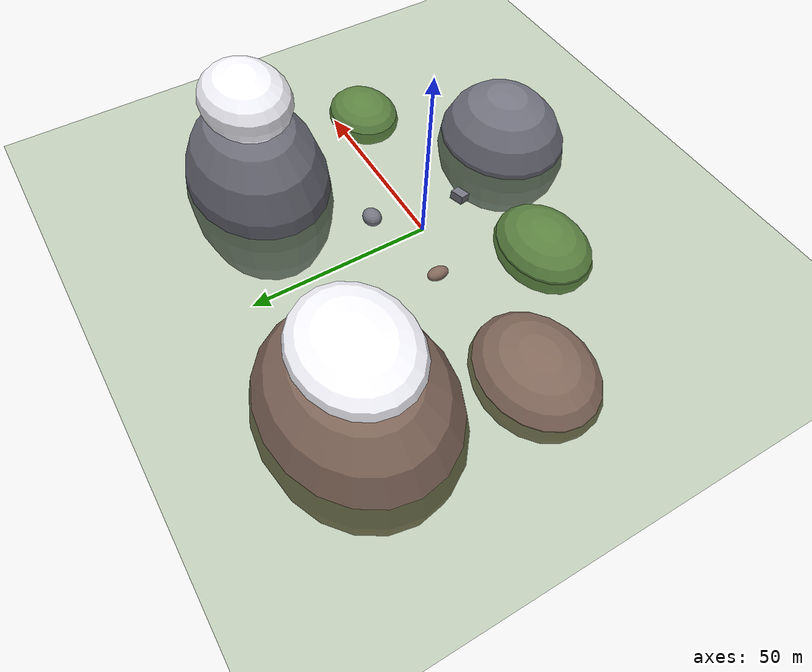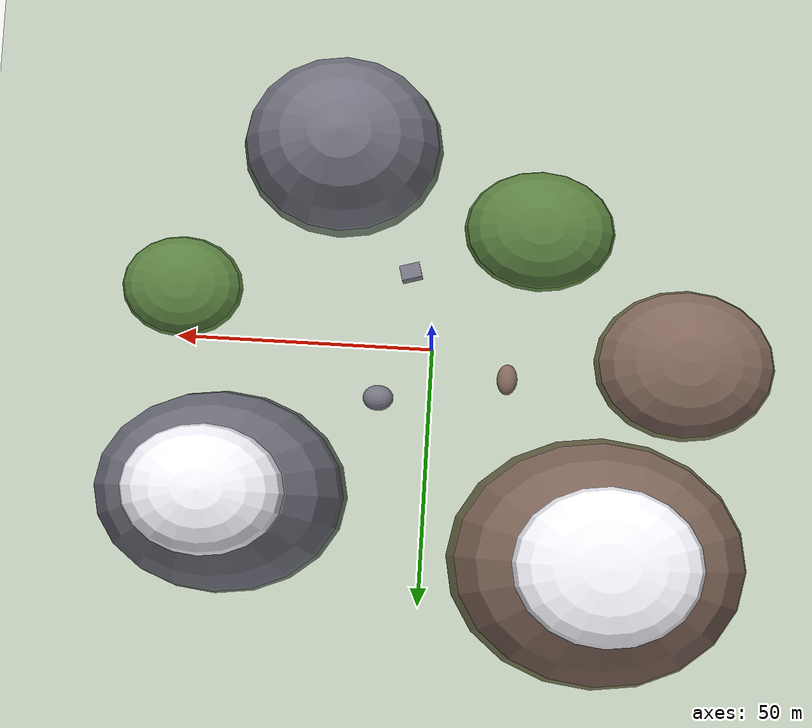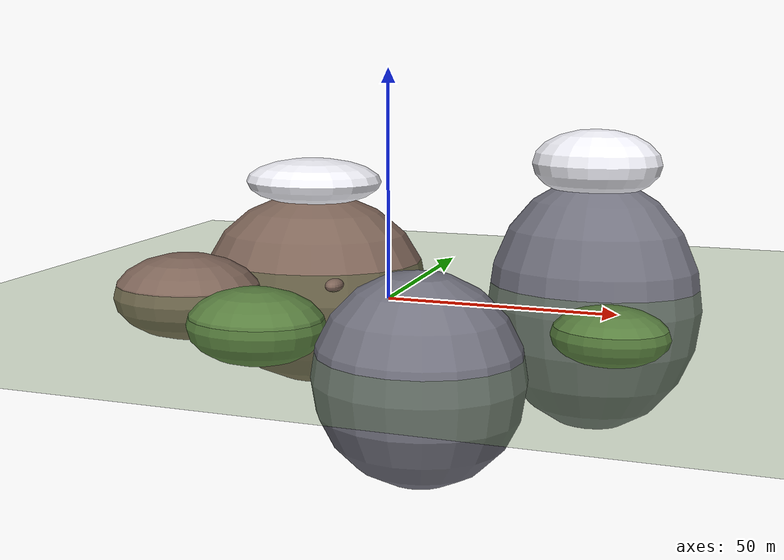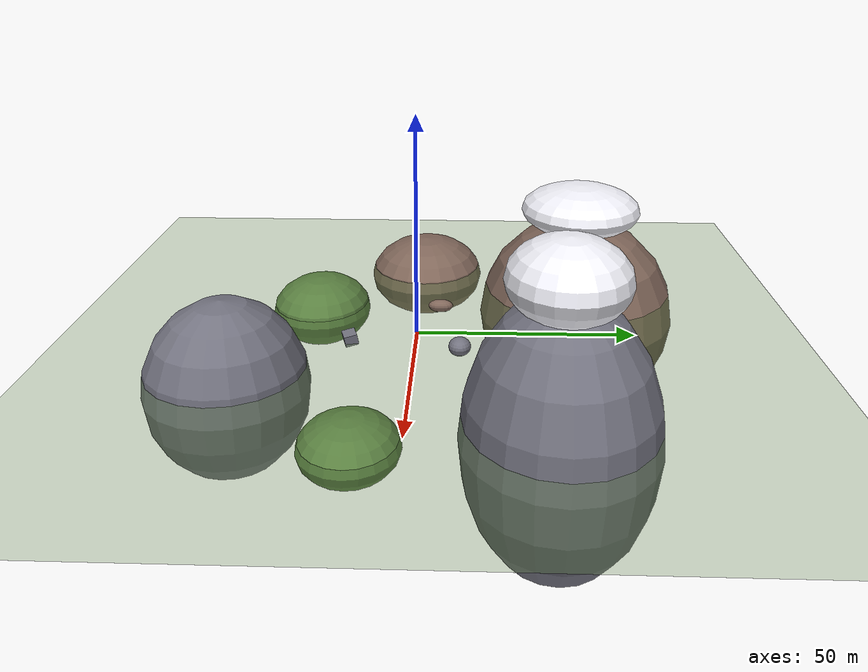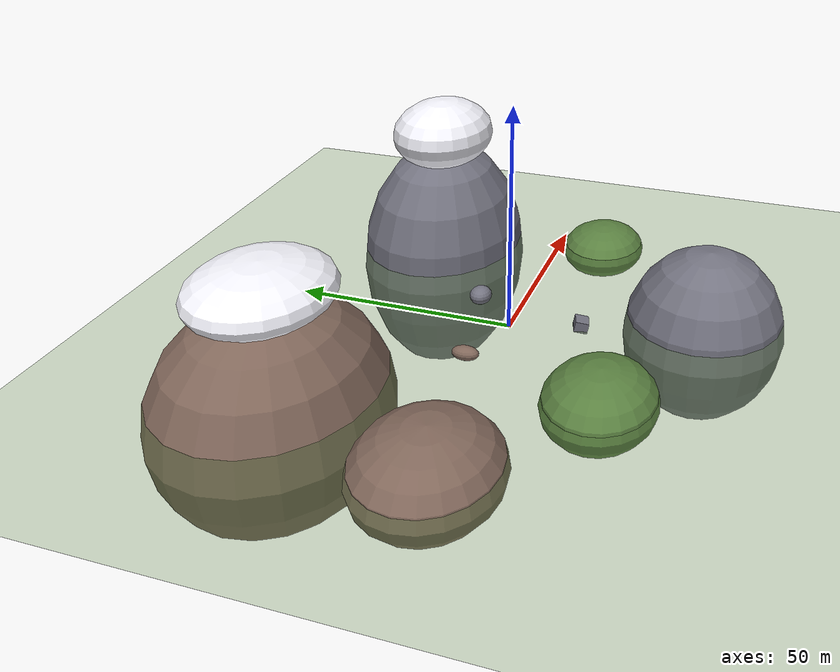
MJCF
<mujoco>
  <!-- Mountain terrain environment -->
  <asset>
    <material name="grass" rgba="0.35 0.5 0.25 1"/>
    <material name="rock_gray" rgba="0.45 0.45 0.5 1"/>
    <material name="rock_brown" rgba="0.5 0.4 0.35 1"/>
    <material name="snow" rgba="0.95 0.95 0.98 1"/>
  </asset>

  <worldbody>
    <body name="mountain_terrain">
      <!-- Base ground -->
      <geom name="ground" type="plane" size="100 100 0.1" material="grass" friction="1.0 0.5 0.1"/>

      <!-- Mountain peaks -->
      <geom name="peak_1" type="ellipsoid" size="25 20 30" pos="40 30 -5" material="rock_gray"/>
      <geom name="peak_1_snow" type="ellipsoid" size="15 12 8" pos="40 30 28" material="snow"/>

      <geom name="peak_2" type="ellipsoid" size="30 25 25" pos="-35 40 -8" material="rock_brown"/>
      <geom name="peak_2_snow" type="ellipsoid" size="18 15 6" pos="-35 40 20" material="snow"/>

      <geom name="peak_3" type="ellipsoid" size="20 18 20" pos="20 -40 -5" material="rock_gray"/>

      <!-- Hills -->
      <geom name="hill_1" type="ellipsoid" size="15 12 8" pos="-20 -25 -2" material="grass"/>
      <geom name="hill_2" type="ellipsoid" size="12 10 6" pos="50 -10 -2" material="grass"/>
      <geom name="hill_3" type="ellipsoid" size="18 15 10" pos="-50 0 -3" material="rock_brown"/>

      <!-- Boulders -->
      <geom name="boulder_1" type="ellipsoid" size="3 2.5 2" pos="10 10 1" material="rock_gray"/>
      <geom name="boulder_2" type="ellipsoid" size="2 3 1.5" pos="-15 5 0.8" material="rock_brown"/>
      <geom name="boulder_3" type="box" size="2 1.5 1.2" pos="5 -15 0.6" euler="10 5 15" material="rock_gray"/>
    </body>
  </worldbody>
</mujoco>
